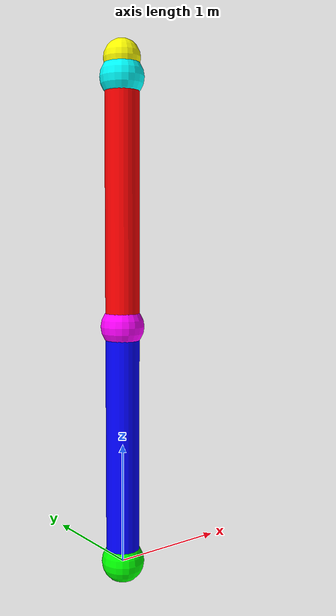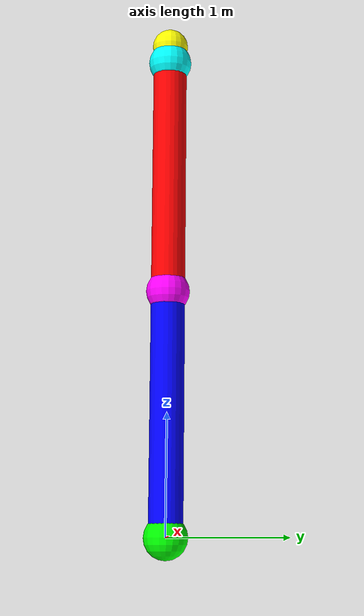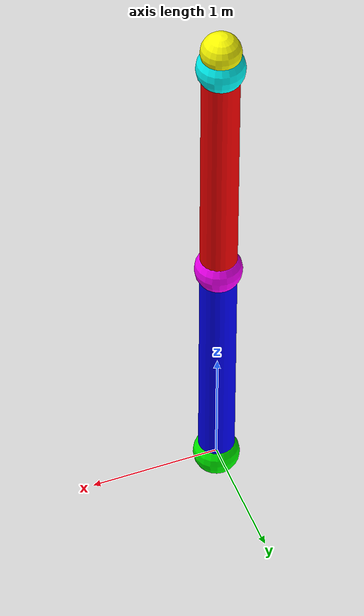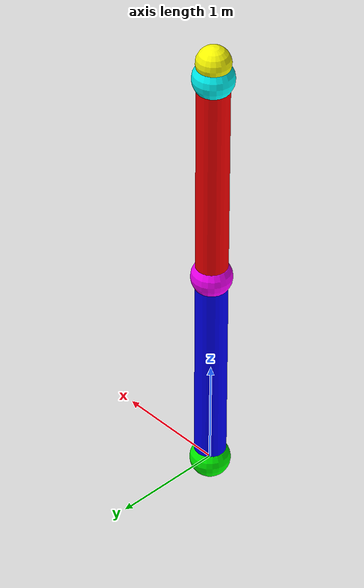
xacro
<?xml version="1.0"?>
<robot name="skyforge" xmlns:xacro="http://ros.org/wiki/xacro">

  <!-- Properties -->
  <xacro:property name="mesh_dir" value="package://skyforge/meshes"/>
  <xacro:property name="link_length" value="2"/>
  <xacro:property name="link_radius" value="0.14"/>
  <xacro:property name="joint_size" value="0.180"/>
  <xacro:property name="end_size" value="0.150"/>
  <xacro:property name="joint_limit" value="${pi}"/>

  <!-- Materials -->
  <material name="blue"><color rgba="0 0 1 1"/></material>
  <material name="red"><color rgba="1 0 0 1"/></material>
  <material name="yellow"><color rgba="1 1 0 1"/></material>
  <material name="magenta"><color rgba="1 0 1 1"/></material>
  <material name="cyan"><color rgba="0 1 1 1"/></material>
  <material name="green"><color rgba="0 1 0 1"/></material>

  <!-- World Link -->
  <link name="world"/>

  <!-- Base Link -->
  <link name="base_link"/>

  <!-- World to base_link -->
  <joint name="world_to_base" type="fixed">
    <parent link="world"/>
    <child link="base_link"/>
    <origin xyz="0 0 0" rpy="0 0 0"/>
  </joint>

  <!-- Joint 1 Visual -->
  <link name="joint1_visual">
    <visual>
      <origin xyz="0 0 0" rpy="0 0 0"/>
      <geometry><sphere radius="${joint_size}"/></geometry>
      <material name="green"/>
    </visual>
    <collision>
      <origin xyz="0 0 0" rpy="0 0 0"/>
      <geometry><sphere radius="${joint_size}"/></geometry>
    </collision>
  </link>
  <joint name="fixed_joint1_visual" type="fixed">
    <parent link="base_link"/>
    <child link="joint1_visual"/>
    <origin xyz="0 0 0" rpy="0 0 0"/>
  </joint>

  <!-- Joint 1 -->
  <joint name="joint1" type="revolute">
    <parent link="joint1_visual"/>
    <child link="link1"/>
    <origin xyz="0 0 0" rpy="0 0 0"/>
    <axis xyz="1 0 0"/>
    <limit lower="-${joint_limit}" upper="${joint_limit}" effort="10" velocity="1.0"/>
    <dynamics damping="0.1" friction="0.1"/>
  </joint>

  <link name="link1">
    <visual>
      <origin xyz="0 0 ${link_length / 2}" rpy="0 0 0"/>
      <geometry><cylinder length="${link_length}" radius="${link_radius}"/></geometry>
      <material name="blue"/>
    </visual>
    <collision>
      <origin xyz="0 0 ${link_length / 2}" rpy="0 0 0"/>
      <geometry><cylinder length="${link_length}" radius="${link_radius}"/></geometry>
    </collision>
  </link>

  <!-- Joint 2 Visual -->
  <link name="joint2_visual">
    <visual>
      <origin xyz="0 0 0" rpy="0 0 0"/>
      <geometry><sphere radius="${joint_size}"/></geometry>
      <material name="magenta"/>
    </visual>
    <collision>
      <origin xyz="0 0 0" rpy="0 0 0"/>
      <geometry><sphere radius="${joint_size}"/></geometry>
    </collision>
  </link>
  <joint name="fixed_joint2_visual" type="fixed">
    <parent link="link1"/>
    <child link="joint2_visual"/>
    <origin xyz="0 0 ${link_length}" rpy="0 0 0"/>
  </joint>

  <!-- Joint 2 -->
  <joint name="joint2" type="revolute">
    <parent link="joint2_visual"/>
    <child link="link2"/>
    <origin xyz="0 0 0" rpy="0 0 0"/>
    <axis xyz="1 0 0"/>
    <limit lower="-${joint_limit}" upper="${joint_limit}" effort="10" velocity="1.0"/>
    <dynamics damping="0.1" friction="0.1"/>
  </joint>

  <link name="link2">
    <visual>
      <origin xyz="0 0 ${link_length / 2}" rpy="0 0 0"/>
      <geometry><cylinder length="${link_length}" radius="${link_radius}"/></geometry>
      <material name="red"/>
    </visual>
    <collision>
      <origin xyz="0 0 ${link_length / 2}" rpy="0 0 0"/>
      <geometry><cylinder length="${link_length}" radius="${link_radius}"/></geometry>
    </collision>
  </link>

  <!-- Joint 3 Visual -->
  <link name="joint3_visual">
    <visual>
      <origin xyz="0 0 0" rpy="0 0 0"/>
      <geometry><sphere radius="${joint_size}"/></geometry>
      <material name="cyan"/>
    </visual>
    <collision>
      <origin xyz="0 0 0" rpy="0 0 0"/>
      <geometry><sphere radius="${joint_size}"/></geometry>
    </collision>
  </link>
  <joint name="fixed_joint3_visual" type="fixed">
    <parent link="link2"/>
    <child link="joint3_visual"/>
    <origin xyz="0 0 ${link_length}" rpy="0 0 0"/>
  </joint>

  <!-- Joint 3 -->
  <joint name="joint3" type="revolute">
    <parent link="joint3_visual"/>
    <child link="end_effector"/>
    <origin xyz="0 0 0" rpy="0 0 0"/>
    <axis xyz="1 0 0"/>
    <limit lower="-${joint_limit}" upper="${joint_limit}" effort="10" velocity="1.0"/>
    <dynamics damping="0.1" friction="0.1"/>
  </joint>

  <!-- End Effector -->
  <link name="end_effector">
    <visual>
      <origin xyz="0 0 ${end_size}" rpy="0 0 0"/>
      <geometry><sphere radius="${end_size}"/></geometry>
      <material name="yellow"/>
    </visual>
    <collision>
      <origin xyz="0 0 ${end_size}" rpy="0 0 0"/>
      <geometry><sphere radius="${end_size}"/></geometry>
    </collision>
  </link>

</robot>
